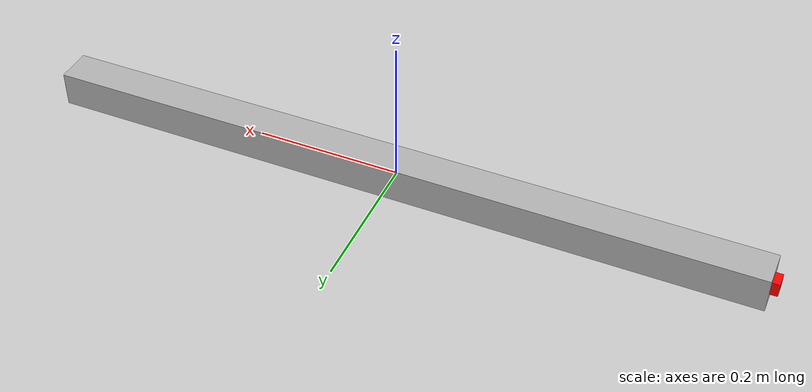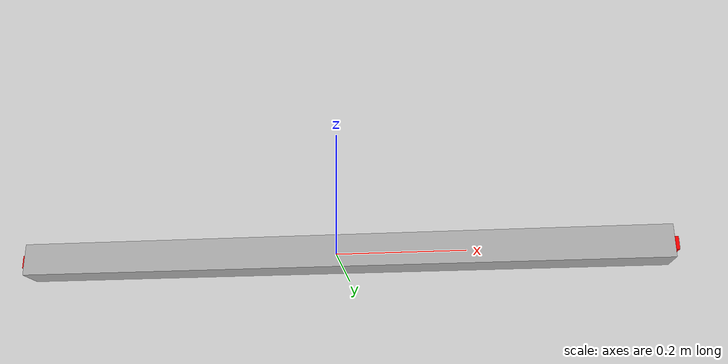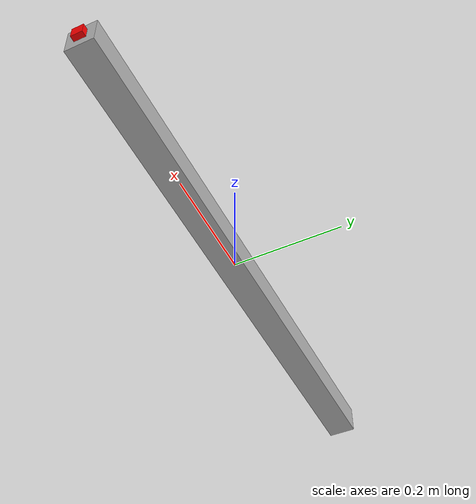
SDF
<?xml version="1.0" ?>
<sdf version="1.7">
  <model name="dual_camera_bar">
    <static>false</static>

    <!-- Main horizontal bar -->
    <link name="horizontal_bar">
      <pose>0 0 0 0 0 0</pose>
      <inertial>
        <mass>1.0</mass>
        <inertia>
          <ixx>0.01</ixx>
          <iyy>0.083</iyy>
          <izz>0.083</izz>
          <ixy>0</ixy>
          <ixz>0</ixz>
          <iyz>0</iyz>
        </inertia>
      </inertial>

      <collision name="collision">
        <geometry>
          <box>
            <size>1.0 0.05 0.05</size>
          </box>
        </geometry>
      </collision>

      <visual name="visual">
        <geometry>
          <box>
            <size>1.0 0.05 0.05</size>
          </box>
        </geometry>
        <material>
          <ambient>0.3 0.3 0.3 1</ambient>
          <diffuse>0.7 0.7 0.7 1</diffuse>
          <specular>1 1 1 1</specular>
        </material>
      </visual>
    </link>

    <!-- Left camera mount point (will be connected to a camera in the world file) -->
    <link name="left_camera_mount">
      <pose relative_to="horizontal_bar">-0.5 0 0 0 0 0</pose>
      <inertial>
        <mass>0.1</mass>
        <inertia>
          <ixx>0.001</ixx>
          <iyy>0.001</iyy>
          <izz>0.001</izz>
          <ixy>0</ixy>
          <ixz>0</ixz>
          <iyz>0</iyz>
        </inertia>
      </inertial>

      <collision name="collision">
        <geometry>
          <box>
            <size>0.02 0.02 0.02</size>
          </box>
        </geometry>
      </collision>

      <visual name="visual">
        <geometry>
          <box>
            <size>0.02 0.02 0.02</size>
          </box>
        </geometry>
        <material>
          <ambient>1 0 0 1</ambient>
          <diffuse>1 0 0 1</diffuse>
        </material>
      </visual>
    </link>

    <!-- Right camera mount point (will be connected to a camera in the world file) -->
    <link name="right_camera_mount">
      <pose relative_to="horizontal_bar">0.5 0 0 0 0 0</pose>
      <inertial>
        <mass>0.1</mass>
        <inertia>
          <ixx>0.001</ixx>
          <iyy>0.001</iyy>
          <izz>0.001</izz>
          <ixy>0</ixy>
          <ixz>0</ixz>
          <iyz>0</iyz>
        </inertia>
      </inertial>

      <collision name="collision">
        <geometry>
          <box>
            <size>0.02 0.02 0.02</size>
          </box>
        </geometry>
      </collision>

      <visual name="visual">
        <geometry>
          <box>
            <size>0.02 0.02 0.02</size>
          </box>
        </geometry>
        <material>
          <ambient>1 0 0 1</ambient>
          <diffuse>1 0 0 1</diffuse>
        </material>
      </visual>
    </link>

    <!-- Fixed joints between the bar and camera mount points -->
    <joint name="left_mount_joint" type="fixed">
      <parent>horizontal_bar</parent>
      <child>left_camera_mount</child>
    </joint>

    <joint name="right_mount_joint" type="fixed">
      <parent>horizontal_bar</parent>
      <child>right_camera_mount</child>
    </joint>
  </model>
</sdf>
